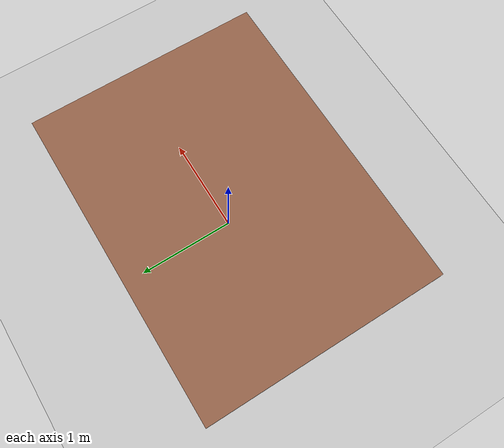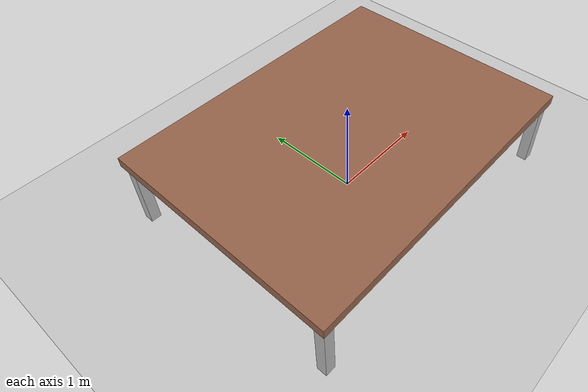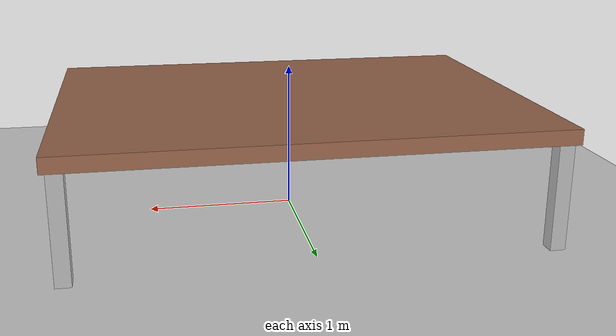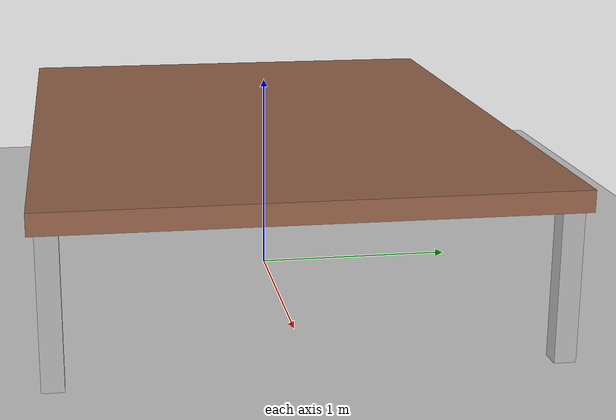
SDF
<?xml version="1.0" ?>
<sdf version="1.7">
  <world name="empty_world">

    <!-- Directional Light -->
    <light type="directional" name="sun">
      <cast_shadows>true</cast_shadows>
      <pose>0 0 10 0 0 0</pose>
      <diffuse>0.8 0.8 0.8 1</diffuse>
      <specular>0.2 0.2 0.2 1</specular>
      <attenuation>
        <range>1000</range>
        <constant>0.9</constant>
        <linear>0.01</linear>
        <quadratic>0.001</quadratic>
      </attenuation>
      <direction>-0.5 0.1 -0.9</direction>
    </light>

    <!-- Ground Plane -->
    <model name="ground_plane">
      <static>true</static>
      <link name="link">
        <collision name="collision">
          <geometry>
            <plane>
              <normal>0 0 1</normal>
            </plane>
          </geometry>
        </collision>
        <visual name="visual">
          <geometry>
            <plane>
              <normal>0 0 1</normal>
              <size>100 100</size>
            </plane>
          </geometry>
          <material>
            <ambient>0.8 0.8 0.8 1</ambient>
            <diffuse>0.8 0.8 0.8 1</diffuse>
            <specular>0.8 0.8 0.8 1</specular>
          </material>
        </visual>
      </link>
    </model>

    <!-- Table model -->
    <include>
      <uri>model://table</uri>
      <name>table</name>
      <pose>0 0 0 0 0 0</pose>
    </include>

  </world>
</sdf>

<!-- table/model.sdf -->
<sdf version="1.6">
  <model name="table">
    <static>true</static>

    <!-- Table top -->
    <link name="top">
      <pose>0 0 0.75 0 0 0</pose>
      <collision name="collision">
        <geometry>
          <box>
            <size>3.2 2.4 0.10</size>
          </box>
        </geometry>
      </collision>
      <visual name="visual">
        <geometry>
          <box>
            <size>3.2 2.4 0.10</size>
          </box>
        </geometry>
        <material>
          <ambient>0.6 0.4 0.3 1</ambient>
          <diffuse>0.6 0.4 0.3 1</diffuse>
        </material>
      </visual>
    </link>

    <!-- Legs -->
    <link name="leg1">
      <pose>1.52 1.12 0.375 0 0 0</pose>
      <collision name="collision">
        <geometry>
          <box>
            <size>0.10 0.10 0.75</size>
          </box>
        </geometry>
      </collision>
      <visual name="visual">
        <geometry>
          <box>
            <size>0.10 0.10 0.75</size>
          </box>
        </geometry>
      </visual>
    </link>

    <link name="leg2">
      <pose>-1.52 1.12 0.375 0 0 0</pose>
      <collision name="collision">
        <geometry>
          <box>
            <size>0.10 0.10 0.75</size>
          </box>
        </geometry>
      </collision>
      <visual name="visual">
        <geometry>
          <box>
            <size>0.10 0.10 0.75</size>
          </box>
        </geometry>
      </visual>
    </link>

    <link name="leg3">
      <pose>1.52 -1.12 0.375 0 0 0</pose>
      <collision name="collision">
        <geometry>
          <box>
            <size>0.10 0.10 0.75</size>
          </box>
        </geometry>
      </collision>
      <visual name="visual">
        <geometry>
          <box>
            <size>0.10 0.10 0.75</size>
          </box>
        </geometry>
      </visual>
    </link>

    <link name="leg4">
      <pose>-1.52 -1.12 0.375 0 0 0</pose>
      <collision name="collision">
        <geometry>
          <box>
            <size>0.10 0.10 0.75</size>
          </box>
        </geometry>
      </collision>
      <visual name="visual">
        <geometry>
          <box>
            <size>0.10 0.10 0.75</size>
          </box>
        </geometry>
      </visual>
    </link>

  </model>
</sdf>
